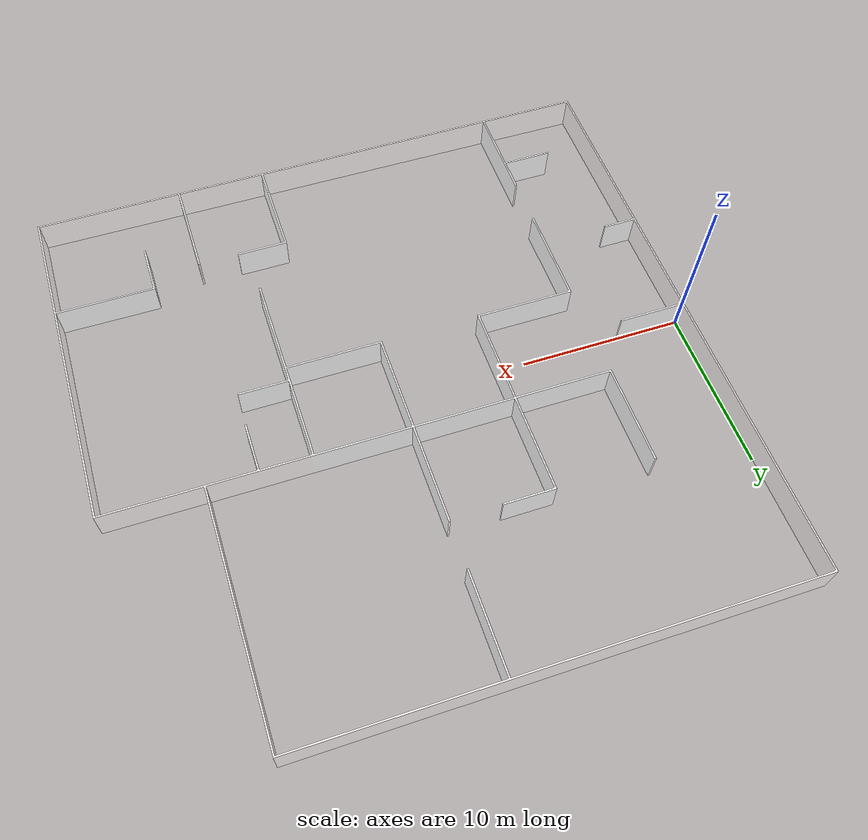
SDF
<?xml version="1.0"?>

<sdf version="1.4">
    <model name="walls">
        <static>true</static>
        <link name="walls_link">

            <visual name="walls_mesh">
                <geometry>
                    <mesh>
                        <uri>model://walls/meshes/model.dae</uri>
                    </mesh>
                </geometry>
            </visual>
            <!-- External Walls-->
            <collision name="walls_collison_1">
                <pose>-0.05 0 1</pose>
                <geometry>
                    <box>
                        <size>0.1 36 2.00</size>
                    </box>
                </geometry>
            </collision>

            <collision name="walls_collison_2">
                <pose>18 -17.95 1 0 0 1.5707</pose>
                <geometry>
                    <box>
                        <size>0.1 36 2.00</size>
                    </box>
                </geometry>
            </collision>

            <collision name="walls_collison_3">
                <pose>35.95 -7.4 1 0 0 0</pose>
                <geometry>
                    <box>
                        <size>0.1 21 2.00</size>
                    </box>
                </geometry>
            </collision>

            <collision name="walls_collison_4">
                <pose>21 3.05 1 0 0 1.5707</pose>
                <geometry>
                    <box>
                        <size>0.1 30 2.00</size>
                    </box>
                </geometry>
            </collision>

            <collision name="walls_collison_5">
                <pose>29.95 10.5 1 0 0 0</pose>
                <geometry>
                    <box>
                        <size>0.1 15 2.00</size>
                    </box>
                </geometry>
            </collision>

            <collision name="walls_collison_6">
                <pose>15 17.95 1 0 0 1.5707</pose>
                <geometry>
                    <box>
                        <size>0.1 30 2.00</size>
                    </box>
                </geometry>
            </collision>
            <!-- Internal Walls-->
            <collision name="walls_collison_7">
                <pose>18.05 14.9 1 0 0 0</pose>
                <geometry>
                    <box>
                        <size>0.1 6 2.00</size>
                    </box>
                </geometry>
            </collision>

            <collision name="walls_collison_8">
                <pose>18.05 6.1 1 0 0 0</pose>
                <geometry>
                    <box>
                        <size>0.1 6 2.00</size>
                    </box>
                </geometry>
            </collision>

            <collision name="walls_collison_9">
                <pose>11.95 6.1 1 0 0 0</pose>
                <geometry>
                    <box>
                        <size>0.1 6 2.00</size>
                    </box>
                </geometry>
            </collision>

            <collision name="walls_collison_10">
                <pose>6.05 6.1 1 0 0 0</pose>
                <geometry>
                    <box>
                        <size>0.1 6 2.00</size>
                    </box>
                </geometry>
            </collision>

            <collision name="walls_collison_11">
                <pose>18.05 0 1 0 0 0</pose>
                <geometry>
                    <box>
                        <size>0.1 6 2.00</size>
                    </box>
                </geometry>
            </collision>

            <collision name="walls_collison_12">
                <pose>11.95 0 1 0 0 0</pose>
                <geometry>
                    <box>
                        <size>0.1 6 2.00</size>
                    </box>
                </geometry>
            </collision>

            <collision name="walls_collison_13">
                <pose>6.05 -6 1 0 0 0</pose>
                <geometry>
                    <box>
                        <size>0.1 6 2.00</size>
                    </box>
                </geometry>
            </collision>

            <collision name="walls_collison_14">
                <pose>6.05 -14.9 1 0 0 0</pose>
                <geometry>
                    <box>
                        <size>0.1 6 2.00</size>
                    </box>
                </geometry>
            </collision>

            <collision name="walls_collison_15">
                <pose>21.45 -14.9 1 0 0 0</pose>
                <geometry>
                    <box>
                        <size>0.1 6 2.00</size>
                    </box>
                </geometry>
            </collision>

            <collision name="walls_collison_16">
                <pose>26.95 -14.9 1 0 0 0</pose>
                <geometry>
                    <box>
                        <size>0.1 6 2.00</size>
                    </box>
                </geometry>
            </collision>

            <collision name="walls_collison_17">
                <pose>9 -2.95 1 0 0 1.5707</pose>
                <geometry>
                    <box>
                        <size>0.1 6 2.00</size>
                    </box>
                </geometry>
            </collision>

            <collision name="walls_collison_18">
                <pose>20.95 -2.95 1 0 0 1.5707</pose>
                <geometry>
                    <box>
                        <size>0.1 5.8 2.00</size>
                    </box>
                </geometry>
            </collision>

            <collision name="walls_collison_19">
                <pose>32.9 -10.95 1 0 0 1.5707</pose>
                <geometry>
                    <box>
                        <size>0.1 6 2.00</size>
                    </box>
                </geometry>
            </collision>

            <collision name="walls_collison_20">
                <pose>4.5 -13.95 1 0 0 1.5707</pose>
                <geometry>
                    <box>
                        <size>0.1 3 2.00</size>
                    </box>
                </geometry>
            </collision>

            <collision name="walls_collison_21">
                <pose>13.5 9.05 1 0 0 1.5707</pose>
                <geometry>
                    <box>
                        <size>0.1 3 2.00</size>
                    </box>
                </geometry>
            </collision>

            <collision name="walls_collison_22">
                <pose>25.4 -2.05 1 0 0 1.5707</pose>
                <geometry>
                    <box>
                        <size>0.1 3 2.00</size>
                    </box>
                </geometry>
            </collision>

            <collision name="walls_collison_23">
                <pose>23 -11.95 1 0 0 1.5707</pose>
                <geometry>
                    <box>
                        <size>0.1 3 2.00</size>
                    </box>
                </geometry>
            </collision>

            <collision name="walls_collison_24">
                <pose>29.95 -12.5 1 0 0 0</pose>
                <geometry>
                    <box>
                        <size>0.1 3 2.00</size>
                    </box>
                </geometry>
            </collision>

            <collision name="walls_collison_25">
                <pose>26.95 1.5 1 0 0 0</pose>
                <geometry>
                    <box>
                        <size>0.1 3 2.00</size>
                    </box>
                </geometry>
            </collision>

            <collision name="walls_collison_26">
                <pose>1 -6.95 1 0 0 1.5707</pose>
                <geometry>
                    <box>
                        <size>0.1 2 2.00</size>
                    </box>
                </geometry>
            </collision>

            <collision name="walls_collison_27">
                <pose>2 0 1 0 0 1.5707</pose>
                <geometry>
                    <box>
                        <size>0.1 4 2.00</size>
                    </box>
                </geometry>
            </collision>

            <collision name="walls_collison_28">
                <pose>23.85 -3 1 0 0 0</pose>
                <geometry>
                    <box>
                        <size>0.1 12 2.00</size>
                    </box>
                </geometry>
            </collision>

        </link>
    </model>
</sdf>
